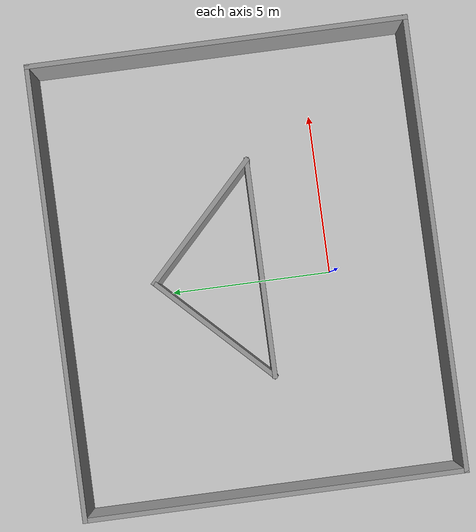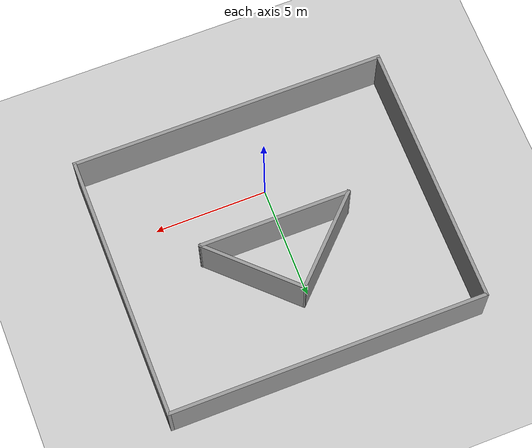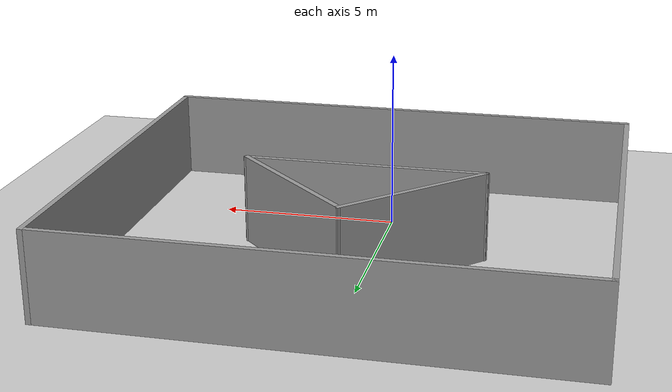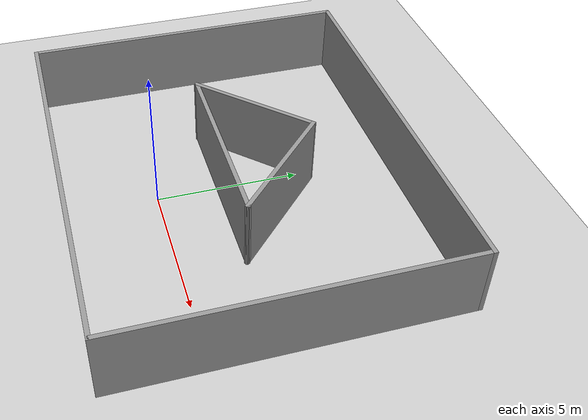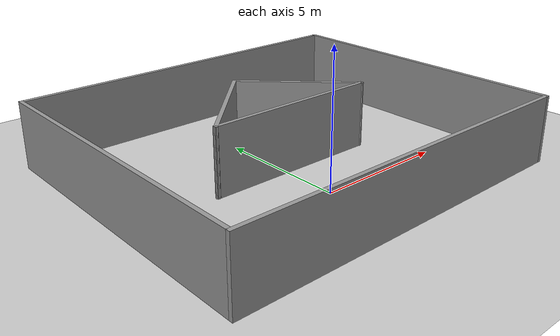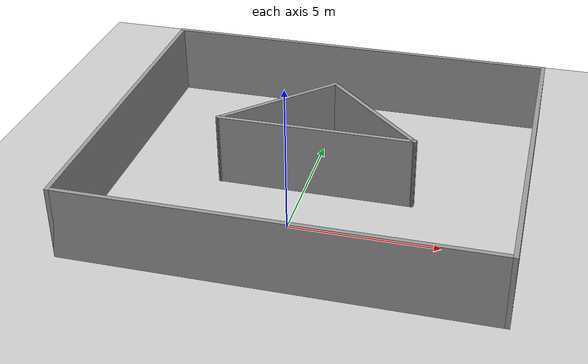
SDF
<sdf version="1.6">
 <world name="default">
  <light name="sun" type="directional">
   <pose>0 0 10 0 -0 0</pose>
   <diffuse>0.8 0.8 0.8 1</diffuse>
   <specular>0.2 0.2 0.2 1</specular>
   <attenuation>
    <range>1000</range>
    <constant>0.9</constant>
    <linear>0.01</linear>
    <quadratic>0.001</quadratic>
   </attenuation>
   <direction>-0.5 0.1 -0.9</direction>
  </light>
  <model name="ground_plane">
   <static>1</static>
   <link name="link">
    <collision name="collision">
     <geometry><plane><normal>0 0 1</normal><size>100 100</size></plane></geometry>
     <surface>
      <contact><collide_bitmask>65535</collide_bitmask></contact>
      <friction><ode><mu>100</mu><mu2>50</mu2></ode></friction>
     </surface>
    </collision>
    <visual name="visual">
     <cast_shadows>0</cast_shadows>
     <geometry><plane><normal>0 0 1</normal><size>100 100</size></plane></geometry>
     <material>
      <script><uri>file://media/materials/scripts/gazebo.material</uri><name>Gazebo/Grey</name></script>
     </material>
    </visual>
   </link>
  </model>
  <gravity>0 0 -9.8</gravity>
  <magnetic_field>6e-06 2.3e-05 -4.2e-05</magnetic_field>
  <atmosphere type="adiabatic"/>
  <physics name="default_physics" default="0" type="ode">
   <max_step_size>0.001</max_step_size>
   <real_time_factor>1</real_time_factor>
   <real_time_update_rate>1000</real_time_update_rate>
  </physics>
  <scene><ambient>0.4 0.4 0.4 1</ambient><background>0.7 0.7 0.7 1</background><shadows>1</shadows></scene>
  <spherical_coordinates>
   <surface_model>EARTH_WGS84</surface_model>
   <latitude_deg>0</latitude_deg>
   <longitude_deg>0</longitude_deg>
   <elevation>0</elevation>
   <heading_deg>0</heading_deg>
  </spherical_coordinates>
  <model name="triangle_test1">
   <pose>0.425636 2.62122 0 0 -0 0</pose>
   <link name="Wall_0">
    <collision name="Wall_0_Collision">
     <geometry><box><size>11.75 0.15 2.5</size></box></geometry>
     <pose>0 0 1.25 0 -0 0</pose>
    </collision>
    <visual name="Wall_0_Visual">
     <pose>0 0 1.25 0 -0 0</pose>
     <geometry><box><size>11.75 0.15 2.5</size></box></geometry>
     <material>
      <script><uri>file://media/materials/scripts/gazebo.material</uri><name>Gazebo/Grey</name></script>
      <ambient>1 1 1 1</ambient>
     </material>
     <meta><layer>0</layer></meta>
    </visual>
    <pose>-6.925 0 0 0 -0 1.5708</pose>
   </link>
   <link name="Wall_10">
    <collision name="Wall_10_Collision">
     <geometry><box><size>4.81738 0.15 2.5</size></box></geometry>
     <pose>0 0 1.25 0 -0 0</pose>
    </collision>
    <visual name="Wall_10_Visual">
     <pose>0 0 1.25 0 -0 0</pose>
     <geometry><box><size>4.81738 0.15 2.5</size></box></geometry>
     <material>
      <script><uri>file://media/materials/scripts/gazebo.material</uri><name>Gazebo/Grey</name></script>
      <ambient>1 1 1 1</ambient>
     </material>
     <meta><layer>0</layer></meta>
    </visual>
    <pose>1.56809 1.17776 0 0 -0 2.37053</pose>
   </link>
   <link name="Wall_3">
    <collision name="Wall_3_Collision">
     <geometry><box><size>14 0.15 2.5</size></box></geometry>
     <pose>0 0 1.25 0 -0 0</pose>
    </collision>
    <visual name="Wall_3_Visual">
     <pose>0 0 1.25 0 -0 0</pose>
     <geometry><box><size>14 0.15 2.5</size></box></geometry>
     <material>
      <script><uri>file://media/materials/scripts/gazebo.material</uri><name>Gazebo/Grey</name></script>
      <ambient>1 1 1 1</ambient>
     </material>
     <meta><layer>0</layer></meta>
    </visual>
    <pose>-0 -5.8 0 0 -0 0</pose>
   </link>
   <link name="Wall_4">
    <collision name="Wall_4_Collision">
     <geometry><box><size>11.75 0.15 2.5</size></box></geometry>
     <pose>0 0 1.25 0 -0 0</pose>
    </collision>
    <visual name="Wall_4_Visual">
     <pose>0 0 1.25 0 -0 0</pose>
     <geometry><box><size>11.75 0.15 2.5</size></box></geometry>
     <material>
      <script><uri>file://media/materials/scripts/gazebo.material</uri><name>Gazebo/Grey</name></script>
      <ambient>1 1 1 1</ambient>
     </material>
     <meta><layer>0</layer></meta>
    </visual>
    <pose>6.925 0 0 0 -0 1.5708</pose>
   </link>
   <link name="Wall_5">
    <collision name="Wall_5_Collision">
     <geometry><box><size>14 0.15 2.5</size></box></geometry>
     <pose>0 0 1.25 0 -0 0</pose>
    </collision>
    <visual name="Wall_5_Visual">
     <pose>0 0 1.25 0 -0 0</pose>
     <geometry><box><size>14 0.15 2.5</size></box></geometry>
     <material>
      <script><uri>file://media/materials/scripts/gazebo.material</uri><name>Gazebo/Grey</name></script>
      <ambient>1 1 1 1</ambient>
     </material>
     <meta><layer>0</layer></meta>
    </visual>
    <pose>-0 5.8 0 0 -0 3.14159</pose>
   </link>
   <link name="Wall_8">
    <collision name="Wall_8_Collision">
     <geometry><box><size>4.75 0.15 2.5</size></box></geometry>
     <pose>0 0 1.25 0 -0 0</pose>
    </collision>
    <visual name="Wall_8_Visual">
     <pose>0 0 1.25 0 -0 0</pose>
     <geometry><box><size>4.75 0.15 2.5</size></box></geometry>
     <material>
      <script><uri>file://media/materials/scripts/gazebo.material</uri><name>Gazebo/Grey</name></script>
      <ambient>1 1 1 1</ambient>
     </material>
     <meta><layer>0</layer></meta>
    </visual>
    <pose>-1.73191 1.17776 0 0 -0 -2.35619</pose>
   </link>
   <link name="Wall_9">
    <collision name="Wall_9_Collision">
     <geometry><box><size>6.75 0.15 2.5</size></box></geometry>
     <pose>0 0 1.25 0 -0 0</pose>
    </collision>
    <visual name="Wall_9_Visual">
     <pose>0 0 1.25 0 -0 0</pose>
     <geometry><box><size>6.75 0.15 2.5</size></box></geometry>
     <material>
      <script><uri>file://media/materials/scripts/gazebo.material</uri><name>Gazebo/Grey</name></script>
      <ambient>1 1 1 1</ambient>
     </material>
     <meta><layer>0</layer></meta>
    </visual>
    <pose>-0.058254 -0.448584 0 0 -0 0</pose>
   </link>
   <static>1</static>
  </model>
 </world>
</sdf>
